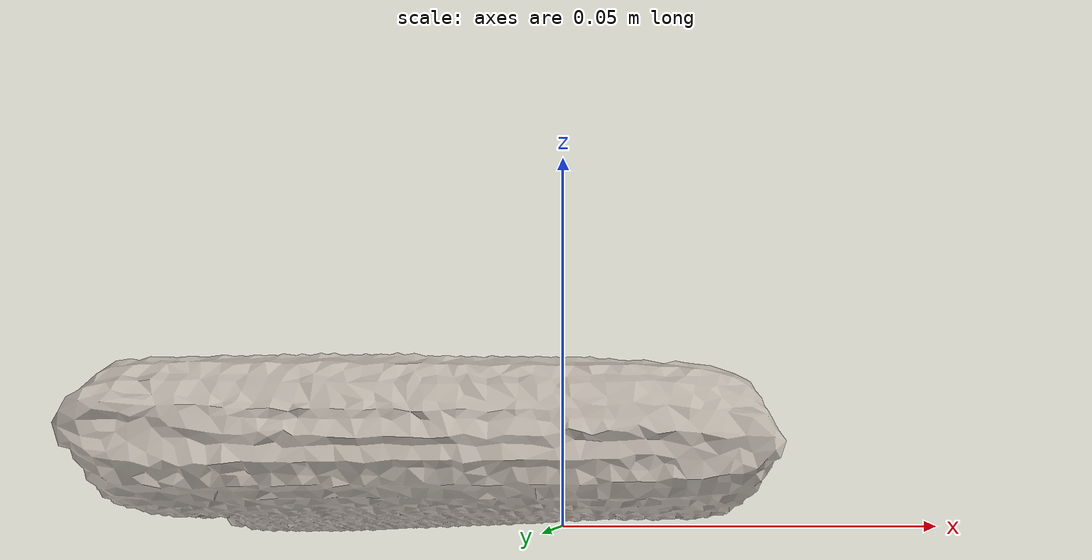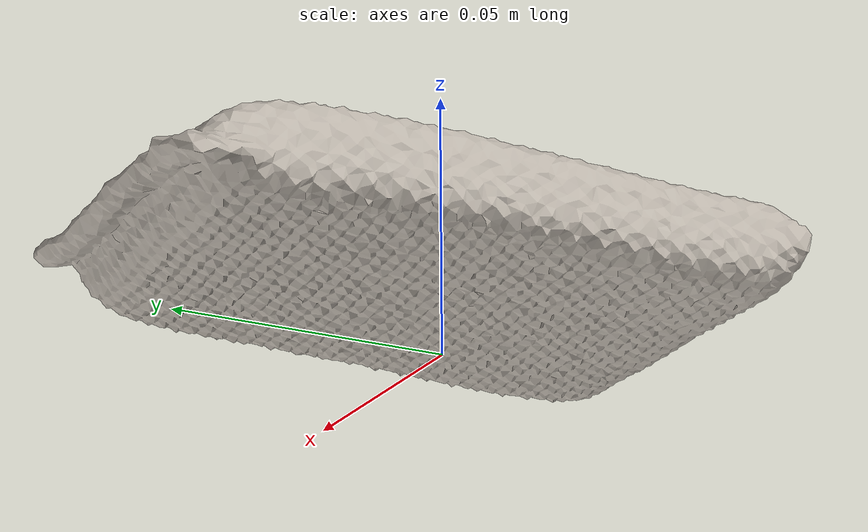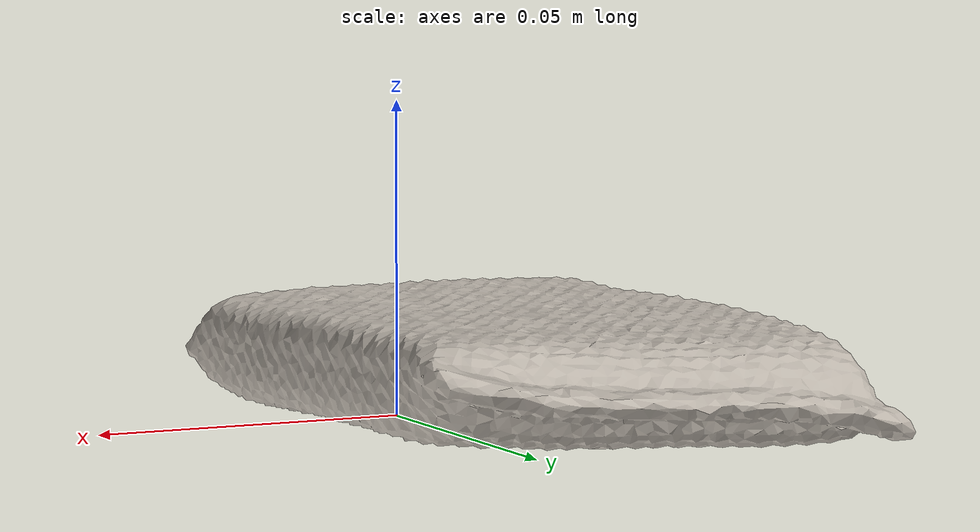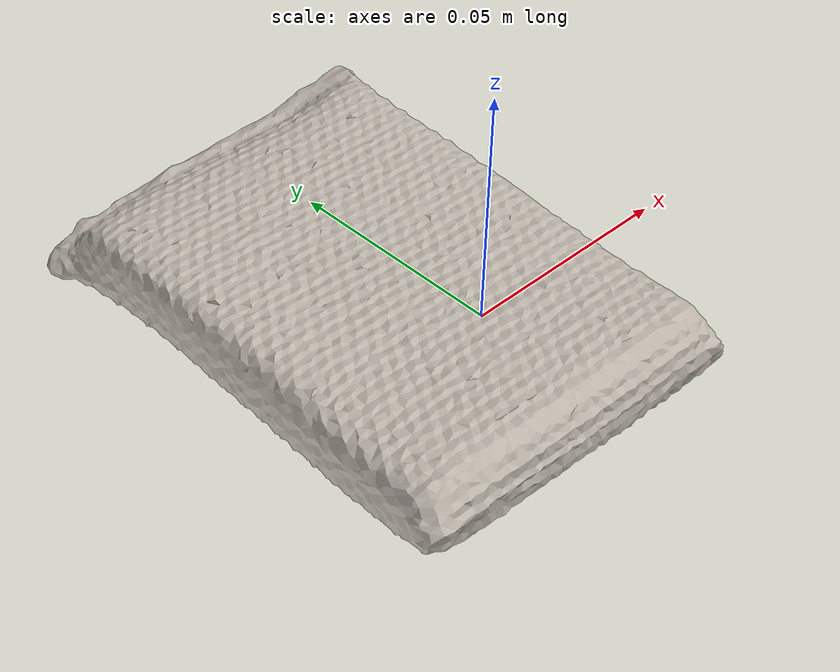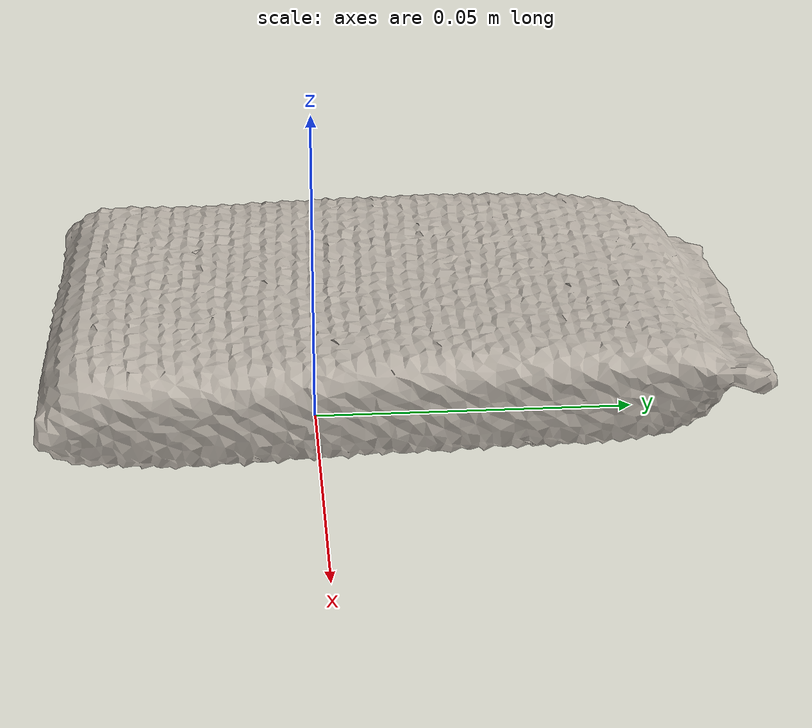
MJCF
<mujoco model="sponge">
  <compiler angle="radian" meshdir="assets" texturedir="assets"/>
    <default>
        <default class="ycb_col">
            <geom contype="1" conaffinity="1" group="3" rgba=".4 .5 .6 1"/>
        </default>
        <default class="ycb_viz">
            <geom contype="0" conaffinity="0" type="mesh" mass="0"/>
        </default>
    </default>
  <asset>
    <texture type="2d" name="sponge_tex" file="texture_map.png"/>
    <material name="sponge_mat" texture="sponge_tex" specular="0.5" shininess="0.5"/>
    <mesh file="textured.obj" name="sponge"/>
    <mesh file="textured_collision_0.obj" name="sponge_collision_0"/>
    <mesh file="textured_collision_1.obj" name="sponge_collision_1"/>
    <mesh file="textured_collision_2.obj" name="sponge_collision_2"/>
    <mesh file="textured_collision_3.obj" name="sponge_collision_3"/>
    <mesh file="textured_collision_4.obj" name="sponge_collision_4"/>
    <mesh file="textured_collision_5.obj" name="sponge_collision_5"/>
  </asset>
  <worldbody>
      <geom class="ycb_viz" material="sponge_mat" mesh="sponge"/>
      <geom mesh="sponge_collision_0" class="ycb_col" conaffinity="1" condim="4" friction="0.1 0.1 0.1" mass="0.0032002985408514663" rgba="1 1 1 1" solimp="0.99 0.99 0.01" solref=".001 0.1" type="mesh" group="3"/>
      <geom mesh="sponge_collision_1" class="ycb_col" conaffinity="1" condim="4" friction="0.1 0.1 0.1" mass="0.0018269456665802762" rgba="1 1 1 1" solimp="0.99 0.99 0.01" solref=".001 0.1" type="mesh" group="3"/>
      <geom mesh="sponge_collision_2" class="ycb_col" conaffinity="1" condim="4" friction="0.1 0.1 0.1" mass="0.0010405468679004406" rgba="1 1 1 1" solimp="0.99 0.99 0.01" solref=".001 0.1" type="mesh" group="3"/>
      <geom mesh="sponge_collision_3" class="ycb_col" conaffinity="1" condim="4" friction="0.1 0.1 0.1" mass="2.730563427792295e-05" rgba="1 1 1 1" solimp="0.99 0.99 0.01" solref=".001 0.1" type="mesh" group="3"/>
      <geom mesh="sponge_collision_4" class="ycb_col" conaffinity="1" condim="4" friction="0.1 0.1 0.1" mass="5.235623030989373e-05" rgba="1 1 1 1" solimp="0.99 0.99 0.01" solref=".001 0.1" type="mesh" group="3"/>
      <geom mesh="sponge_collision_5" class="ycb_col" conaffinity="1" condim="4" friction="0.1 0.1 0.1" mass="5.25470600799996e-05" rgba="1 1 1 1" solimp="0.99 0.99 0.01" solref=".001 0.1" type="mesh" group="3"/>
  </worldbody>
</mujoco>
